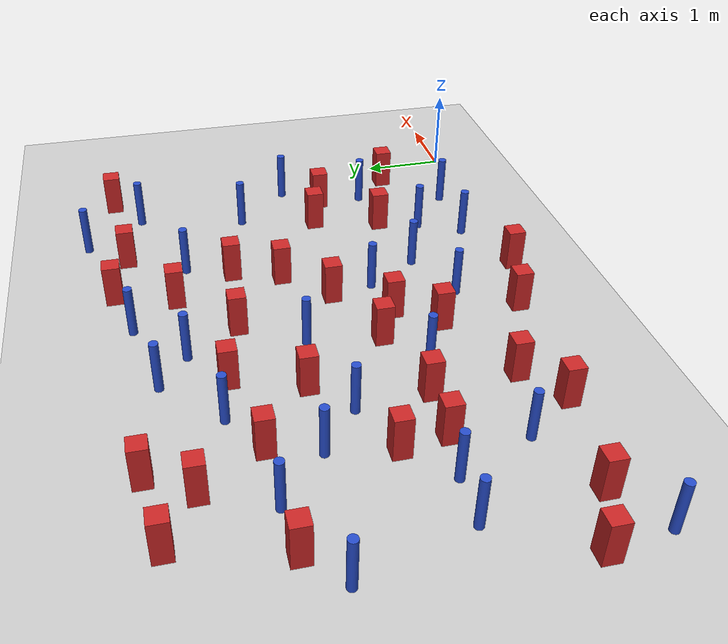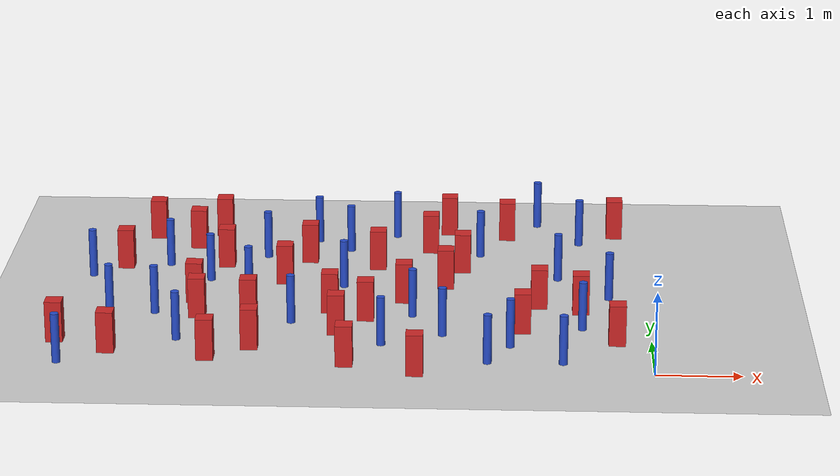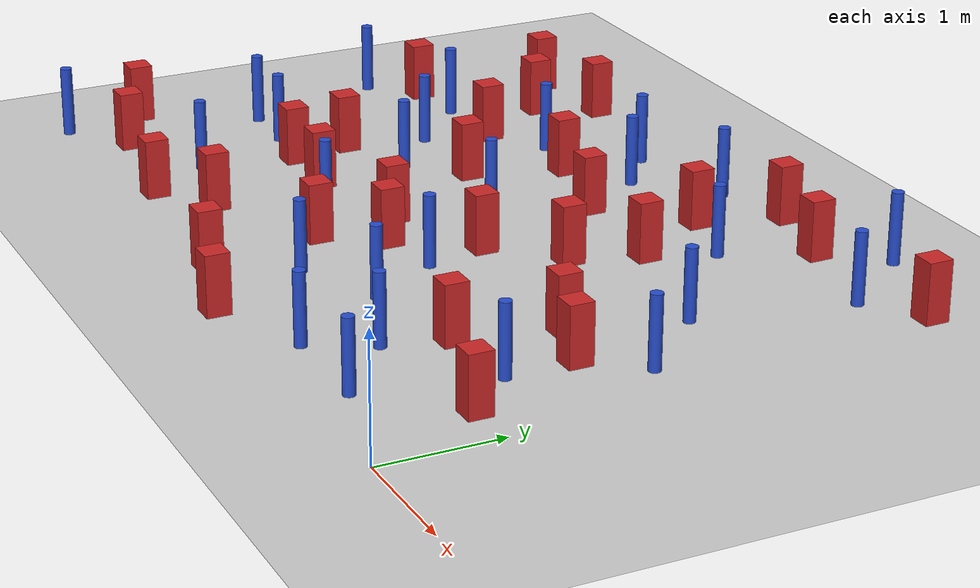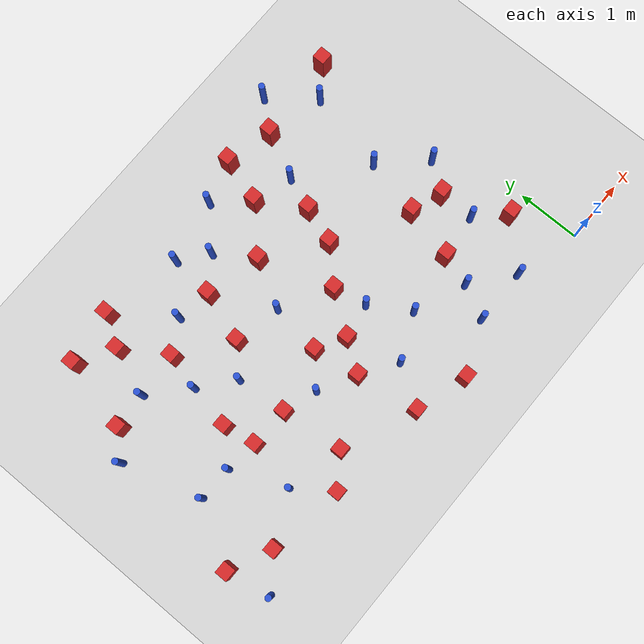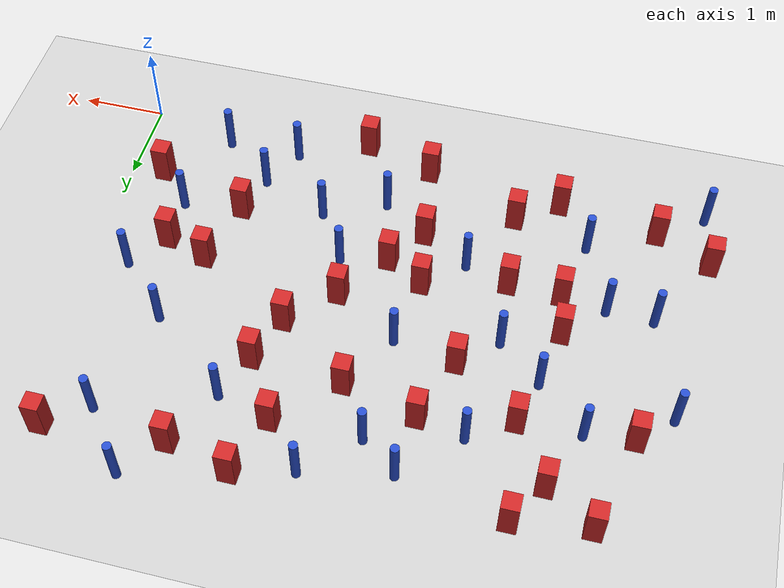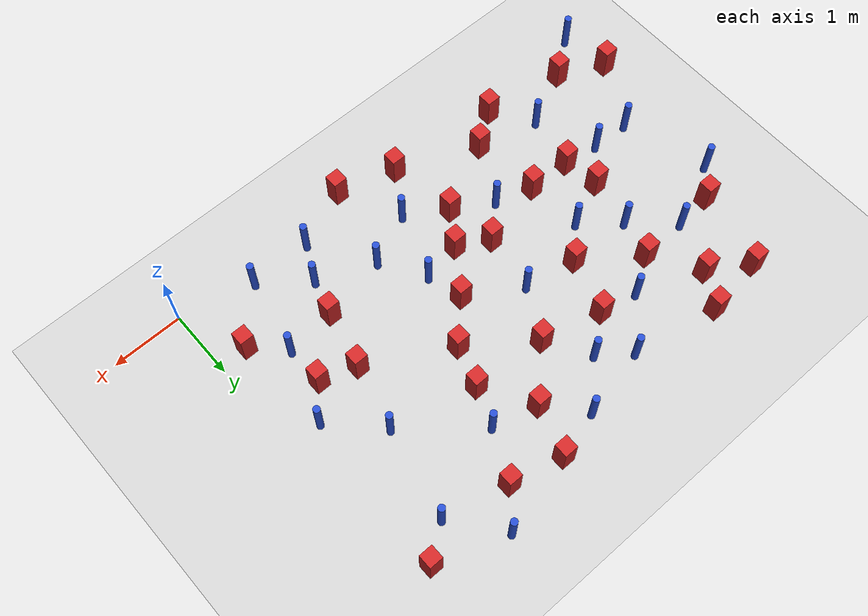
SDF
<sdf version="1.6">
 <world name="default">
  <model name="ground_plane">
   <static>1</static>
   <link name="link">
    <collision name="collision">
     <geometry><plane><normal>0 0 1</normal><size>100 100</size></plane></geometry>
     <surface><friction><ode><mu>100</mu><mu2>50</mu2></ode></friction></surface>
    </collision>
    <visual name="visual">
     <cast_shadows>0</cast_shadows>
     <geometry><plane><normal>0 0 1</normal><size>100 100</size></plane></geometry>
     <material>
      <ambient>1.0 1.0 1.0 1.0</ambient>
      <diffuse>0.8 0.8 0.8 1.0</diffuse>
      <specular>0.01 0.01 0.01 1.000000</specular>
     </material>
    </visual>
   </link>
  </model>
  <model name="square_post_obstacle4">
   <static>true</static>
   <pose>-6.3529247298 0.506604113943 1.91545236811e-07 -7.35059704564e-06 1.12565212e-07 2.39332434364e-05</pose>
   <link name="link">
    <pose>0 0 0.25 0 -0 0</pose>
    <inertial>
     <mass>100</mass>
     <inertia>
      <ixx>0.166667</ixx>
      <ixy>0</ixy>
      <ixz>0</ixz>
      <iyy>0.166667</iyy>
      <iyz>0</iyz>
      <izz>0.166667</izz>
     </inertia>
    </inertial>
    <collision name="collision"><geometry><box><size>.2 .2 .5</size></box></geometry></collision>
    <visual name="visual">
     <geometry><box><size>.2 .2 .5</size></box></geometry>
     <material>
      <script><name>Gazebo/Red</name><uri>file://media/materials/scripts/gazebo.material</uri></script>
     </material>
    </visual>
   </link>
  </model>
  <model name="pole_obstacle5">
   <static>true</static>
   <pose>-6.83310321399 2.95984802754 7.38925637345e-09 -8.47170692798e-08 1.24976764937e-08 -1.74513093023e-07</pose>
   <link name="link">
    <pose>0 0 0.3 0 -0 0</pose>
    <inertial>
     <mass>1</mass>
     <inertia><ixx>0.145833</ixx><ixy>0</ixy><ixz>0</ixz><iyy>0.145833</iyy><iyz>0</iyz><izz>0.125</izz></inertia>
    </inertial>
    <collision name="collision">
     <geometry><cylinder><radius>0.05</radius><length>.6</length></cylinder></geometry>
    </collision>
    <visual name="visual">
     <geometry><cylinder><radius>0.05</radius><length>.6</length></cylinder></geometry>
     <material>
      <script><name>Gazebo/Blue</name><uri>file://media/materials/scripts/gazebo.material</uri></script>
     </material>
    </visual>
   </link>
  </model>
  <model name="square_post_obstacle7">
   <static>true</static>
   <pose>-2.95238209264 2.2382944484 1.91545236811e-07 -7.35059704564e-06 1.12565212e-07 2.39332434364e-05</pose>
   <link name="link">
    <pose>0 0 0.25 0 -0 0</pose>
    <inertial>
     <mass>100</mass>
     <inertia>
      <ixx>0.166667</ixx>
      <ixy>0</ixy>
      <ixz>0</ixz>
      <iyy>0.166667</iyy>
      <iyz>0</iyz>
      <izz>0.166667</izz>
     </inertia>
    </inertial>
    <collision name="collision"><geometry><box><size>.2 .2 .5</size></box></geometry></collision>
    <visual name="visual">
     <geometry><box><size>.2 .2 .5</size></box></geometry>
     <material>
      <script><name>Gazebo/Red</name><uri>file://media/materials/scripts/gazebo.material</uri></script>
     </material>
    </visual>
   </link>
  </model>
  <model name="square_post_obstacle14">
   <static>true</static>
   <pose>-0.408119338565 0.94953494307 1.91545236811e-07 -7.35059704564e-06 1.12565212e-07 2.39332434364e-05</pose>
   <link name="link">
    <pose>0 0 0.25 0 -0 0</pose>
    <inertial>
     <mass>100</mass>
     <inertia>
      <ixx>0.166667</ixx>
      <ixy>0</ixy>
      <ixz>0</ixz>
      <iyy>0.166667</iyy>
      <iyz>0</iyz>
      <izz>0.166667</izz>
     </inertia>
    </inertial>
    <collision name="collision"><geometry><box><size>.2 .2 .5</size></box></geometry></collision>
    <visual name="visual">
     <geometry><box><size>.2 .2 .5</size></box></geometry>
     <material>
      <script><name>Gazebo/Red</name><uri>file://media/materials/scripts/gazebo.material</uri></script>
     </material>
    </visual>
   </link>
  </model>
  <model name="square_post_obstacle17">
   <static>true</static>
   <pose>-6.17913111131 4.42265076465 1.91545236811e-07 -7.35059704564e-06 1.12565212e-07 2.39332434364e-05</pose>
   <link name="link">
    <pose>0 0 0.25 0 -0 0</pose>
    <inertial>
     <mass>100</mass>
     <inertia>
      <ixx>0.166667</ixx>
      <ixy>0</ixy>
      <ixz>0</ixz>
      <iyy>0.166667</iyy>
      <iyz>0</iyz>
      <izz>0.166667</izz>
     </inertia>
    </inertial>
    <collision name="collision"><geometry><box><size>.2 .2 .5</size></box></geometry></collision>
    <visual name="visual">
     <geometry><box><size>.2 .2 .5</size></box></geometry>
     <material>
      <script><name>Gazebo/Red</name><uri>file://media/materials/scripts/gazebo.material</uri></script>
     </material>
    </visual>
   </link>
  </model>
  <model name="square_post_obstacle18">
   <static>true</static>
   <pose>-5.33817524046 4.54224600071 1.91545236811e-07 -7.35059704564e-06 1.12565212e-07 2.39332434364e-05</pose>
   <link name="link">
    <pose>0 0 0.25 0 -0 0</pose>
    <inertial>
     <mass>100</mass>
     <inertia>
      <ixx>0.166667</ixx>
      <ixy>0</ixy>
      <ixz>0</ixz>
      <iyy>0.166667</iyy>
      <iyz>0</iyz>
      <izz>0.166667</izz>
     </inertia>
    </inertial>
    <collision name="collision"><geometry><box><size>.2 .2 .5</size></box></geometry></collision>
    <visual name="visual">
     <geometry><box><size>.2 .2 .5</size></box></geometry>
     <material>
      <script><name>Gazebo/Red</name><uri>file://media/materials/scripts/gazebo.material</uri></script>
     </material>
    </visual>
   </link>
  </model>
  <model name="square_post_obstacle21">
   <static>true</static>
   <pose>-2.26156633794 3.30538135168 1.91545236811e-07 -7.35059704564e-06 1.12565212e-07 2.39332434364e-05</pose>
   <link name="link">
    <pose>0 0 0.25 0 -0 0</pose>
    <inertial>
     <mass>100</mass>
     <inertia>
      <ixx>0.166667</ixx>
      <ixy>0</ixy>
      <ixz>0</ixz>
      <iyy>0.166667</iyy>
      <iyz>0</iyz>
      <izz>0.166667</izz>
     </inertia>
    </inertial>
    <collision name="collision"><geometry><box><size>.2 .2 .5</size></box></geometry></collision>
    <visual name="visual">
     <geometry><box><size>.2 .2 .5</size></box></geometry>
     <material>
      <script><name>Gazebo/Red</name><uri>file://media/materials/scripts/gazebo.material</uri></script>
     </material>
    </visual>
   </link>
  </model>
  <model name="square_post_obstacle27">
   <static>true</static>
   <pose>-4.43828756062 2.82803165865 1.91545236811e-07 -7.35059704564e-06 1.12565212e-07 2.39332434364e-05</pose>
   <link name="link">
    <pose>0 0 0.25 0 -0 0</pose>
    <inertial>
     <mass>100</mass>
     <inertia>
      <ixx>0.166667</ixx>
      <ixy>0</ixy>
      <ixz>0</ixz>
      <iyy>0.166667</iyy>
      <iyz>0</iyz>
      <izz>0.166667</izz>
     </inertia>
    </inertial>
    <collision name="collision"><geometry><box><size>.2 .2 .5</size></box></geometry></collision>
    <visual name="visual">
     <geometry><box><size>.2 .2 .5</size></box></geometry>
     <material>
      <script><name>Gazebo/Red</name><uri>file://media/materials/scripts/gazebo.material</uri></script>
     </material>
    </visual>
   </link>
  </model>
  <model name="pole_obstacle19">
   <static>true</static>
   <pose>-1.91771582292 0.288101899503 7.38925637345e-09 -8.47170692799e-08 1.2497676507e-08 -1.74513093018e-07</pose>
   <link name="link">
    <pose>0 0 0.3 0 -0 0</pose>
    <inertial>
     <mass>1</mass>
     <inertia><ixx>0.145833</ixx><ixy>0</ixy><ixz>0</ixz><iyy>0.145833</iyy><iyz>0</iyz><izz>0.125</izz></inertia>
    </inertial>
    <collision name="collision">
     <geometry><cylinder><radius>0.05</radius><length>.6</length></cylinder></geometry>
    </collision>
    <visual name="visual">
     <geometry><cylinder><radius>0.05</radius><length>.6</length></cylinder></geometry>
     <material>
      <script><name>Gazebo/Blue</name><uri>file://media/materials/scripts/gazebo.material</uri></script>
     </material>
    </visual>
   </link>
  </model>
  <model name="square_post_obstacle30">
   <static>true</static>
   <pose>-2.74436126305 -0.0576603866048 1.91545236811e-07 -7.35059704564e-06 1.12565212e-07 2.39332434364e-05</pose>
   <link name="link">
    <pose>0 0 0.25 0 -0 0</pose>
    <inertial>
     <mass>100</mass>
     <inertia>
      <ixx>0.166667</ixx>
      <ixy>0</ixy>
      <ixz>0</ixz>
      <iyy>0.166667</iyy>
      <iyz>0</iyz>
      <izz>0.166667</izz>
     </inertia>
    </inertial>
    <collision name="collision"><geometry><box><size>.2 .2 .5</size></box></geometry></collision>
    <visual name="visual">
     <geometry><box><size>.2 .2 .5</size></box></geometry>
     <material>
      <script><name>Gazebo/Red</name><uri>file://media/materials/scripts/gazebo.material</uri></script>
     </material>
    </visual>
   </link>
  </model>
  <model name="pole_obstacle20">
   <static>true</static>
   <pose>-6.47195309973 1.74322771378 7.38925637345e-09 -8.471706928e-08 1.24976765134e-08 -1.74513093015e-07</pose>
   <link name="link">
    <pose>0 0 0.3 0 -0 0</pose>
    <inertial>
     <mass>1</mass>
     <inertia><ixx>0.145833</ixx><ixy>0</ixy><ixz>0</ixz><iyy>0.145833</iyy><iyz>0</iyz><izz>0.125</izz></inertia>
    </inertial>
    <collision name="collision">
     <geometry><cylinder><radius>0.05</radius><length>.6</length></cylinder></geometry>
    </collision>
    <visual name="visual">
     <geometry><cylinder><radius>0.05</radius><length>.6</length></cylinder></geometry>
     <material>
      <script><name>Gazebo/Blue</name><uri>file://media/materials/scripts/gazebo.material</uri></script>
     </material>
    </visual>
   </link>
  </model>
  <model name="pole_obstacle22">
   <static>true</static>
   <pose>-5.36052672064 2.8588410902 7.38925637345e-09 -8.47170692798e-08 1.24976764937e-08 -1.74513093023e-07</pose>
   <link name="link">
    <pose>0 0 0.3 0 -0 0</pose>
    <inertial>
     <mass>1</mass>
     <inertia><ixx>0.145833</ixx><ixy>0</ixy><ixz>0</ixz><iyy>0.145833</iyy><iyz>0</iyz><izz>0.125</izz></inertia>
    </inertial>
    <collision name="collision">
     <geometry><cylinder><radius>0.05</radius><length>.6</length></cylinder></geometry>
    </collision>
    <visual name="visual">
     <geometry><cylinder><radius>0.05</radius><length>.6</length></cylinder></geometry>
     <material>
      <script><name>Gazebo/Blue</name><uri>file://media/materials/scripts/gazebo.material</uri></script>
     </material>
    </visual>
   </link>
  </model>
  <model name="pole_obstacle23">
   <static>true</static>
   <pose>-3.68616437885 3.97901580339 7.38925637345e-09 -8.47170692796e-08 1.24976764799e-08 -1.74513093033e-07</pose>
   <link name="link">
    <pose>0 0 0.3 0 -0 0</pose>
    <inertial>
     <mass>1</mass>
     <inertia><ixx>0.145833</ixx><ixy>0</ixy><ixz>0</ixz><iyy>0.145833</iyy><iyz>0</iyz><izz>0.125</izz></inertia>
    </inertial>
    <collision name="collision">
     <geometry><cylinder><radius>0.05</radius><length>.6</length></cylinder></geometry>
    </collision>
    <visual name="visual">
     <geometry><cylinder><radius>0.05</radius><length>.6</length></cylinder></geometry>
     <material>
      <script><name>Gazebo/Blue</name><uri>file://media/materials/scripts/gazebo.material</uri></script>
     </material>
    </visual>
   </link>
  </model>
  <model name="pole_obstacle29">
   <static>true</static>
   <pose>-5.57817930022 0.881417759686 7.38925637345e-09 -8.47170692799e-08 1.24976765038e-08 -1.74513093018e-07</pose>
   <link name="link">
    <pose>0 0 0.3 0 -0 0</pose>
    <inertial>
     <mass>1</mass>
     <inertia><ixx>0.145833</ixx><ixy>0</ixy><ixz>0</ixz><iyy>0.145833</iyy><iyz>0</iyz><izz>0.125</izz></inertia>
    </inertial>
    <collision name="collision">
     <geometry><cylinder><radius>0.05</radius><length>.6</length></cylinder></geometry>
    </collision>
    <visual name="visual">
     <geometry><cylinder><radius>0.05</radius><length>.6</length></cylinder></geometry>
     <material>
      <script><name>Gazebo/Blue</name><uri>file://media/materials/scripts/gazebo.material</uri></script>
     </material>
    </visual>
   </link>
  </model>
  <model name="square_post_obstacle39">
   <static>true</static>
   <pose>-4.78976473604 1.63890168509 1.91545236811e-07 -7.35059704564e-06 1.12565212e-07 2.39332434364e-05</pose>
   <link name="link">
    <pose>0 0 0.25 0 -0 0</pose>
    <inertial>
     <mass>100</mass>
     <inertia>
      <ixx>0.166667</ixx>
      <ixy>0</ixy>
      <ixz>0</ixz>
      <iyy>0.166667</iyy>
      <iyz>0</iyz>
      <izz>0.166667</izz>
     </inertia>
    </inertial>
    <collision name="collision"><geometry><box><size>.2 .2 .5</size></box></geometry></collision>
    <visual name="visual">
     <geometry><box><size>.2 .2 .5</size></box></geometry>
     <material>
      <script><name>Gazebo/Red</name><uri>file://media/materials/scripts/gazebo.material</uri></script>
     </material>
    </visual>
   </link>
  </model>
  <model name="pole_obstacle42">
   <static>true</static>
   <pose>-6.87903153385 0.124969918763 7.38925637345e-09 -8.47170692799e-08 1.24976765098e-08 -1.74513093016e-07</pose>
   <link name="link">
    <pose>0 0 0.3 0 -0 0</pose>
    <inertial>
     <mass>1</mass>
     <inertia><ixx>0.145833</ixx><ixy>0</ixy><ixz>0</ixz><iyy>0.145833</iyy><iyz>0</iyz><izz>0.125</izz></inertia>
    </inertial>
    <collision name="collision">
     <geometry><cylinder><radius>0.05</radius><length>.6</length></cylinder></geometry>
    </collision>
    <visual name="visual">
     <geometry><cylinder><radius>0.05</radius><length>.6</length></cylinder></geometry>
     <material>
      <script><name>Gazebo/Blue</name><uri>file://media/materials/scripts/gazebo.material</uri></script>
     </material>
    </visual>
   </link>
  </model>
  <model name="pole_obstacle43">
   <static>true</static>
   <pose>-3.70486956603 2.68859297781 7.38925637345e-09 -8.47170692798e-08 1.24976764939e-08 -1.74513093025e-07</pose>
   <link name="link">
    <pose>0 0 0.3 0 -0 0</pose>
    <inertial>
     <mass>1</mass>
     <inertia><ixx>0.145833</ixx><ixy>0</ixy><ixz>0</ixz><iyy>0.145833</iyy><iyz>0</iyz><izz>0.125</izz></inertia>
    </inertial>
    <collision name="collision">
     <geometry><cylinder><radius>0.05</radius><length>.6</length></cylinder></geometry>
    </collision>
    <visual name="visual">
     <geometry><cylinder><radius>0.05</radius><length>.6</length></cylinder></geometry>
     <material>
      <script><name>Gazebo/Blue</name><uri>file://media/materials/scripts/gazebo.material</uri></script>
     </material>
    </visual>
   </link>
  </model>
  <model name="square_post_obstacle47">
   <static>true</static>
   <pose>-5.62767027378 4.07397571517 1.91545236811e-07 -7.35059704564e-06 1.12565212e-07 2.39332434364e-05</pose>
   <link name="link">
    <pose>0 0 0.25 0 -0 0</pose>
    <inertial>
     <mass>100</mass>
     <inertia>
      <ixx>0.166667</ixx>
      <ixy>0</ixy>
      <ixz>0</ixz>
      <iyy>0.166667</iyy>
      <iyz>0</iyz>
      <izz>0.166667</izz>
     </inertia>
    </inertial>
    <collision name="collision"><geometry><box><size>.2 .2 .5</size></box></geometry></collision>
    <visual name="visual">
     <geometry><box><size>.2 .2 .5</size></box></geometry>
     <material>
      <script><name>Gazebo/Red</name><uri>file://media/materials/scripts/gazebo.material</uri></script>
     </material>
    </visual>
   </link>
  </model>
  <model name="square_post_obstacle49">
   <static>true</static>
   <pose>-1.5156441775 1.29515172548 1.91545236811e-07 -7.35059704564e-06 1.12565212e-07 2.39332434364e-05</pose>
   <link name="link">
    <pose>0 0 0.25 0 -0 0</pose>
    <inertial>
     <mass>100</mass>
     <inertia>
      <ixx>0.166667</ixx>
      <ixy>0</ixy>
      <ixz>0</ixz>
      <iyy>0.166667</iyy>
      <iyz>0</iyz>
      <izz>0.166667</izz>
     </inertia>
    </inertial>
    <collision name="collision"><geometry><box><size>.2 .2 .5</size></box></geometry></collision>
    <visual name="visual">
     <geometry><box><size>.2 .2 .5</size></box></geometry>
     <material>
      <script><name>Gazebo/Red</name><uri>file://media/materials/scripts/gazebo.material</uri></script>
     </material>
    </visual>
   </link>
  </model>
  <model name="square_post_obstacle50">
   <static>true</static>
   <pose>-0.348688621817 4.62892028573 1.91545236811e-07 -7.35059704564e-06 1.12565212e-07 2.39332434364e-05</pose>
   <link name="link">
    <pose>0 0 0.25 0 -0 0</pose>
    <inertial>
     <mass>100</mass>
     <inertia>
      <ixx>0.166667</ixx>
      <ixy>0</ixy>
      <ixz>0</ixz>
      <iyy>0.166667</iyy>
      <iyz>0</iyz>
      <izz>0.166667</izz>
     </inertia>
    </inertial>
    <collision name="collision"><geometry><box><size>.2 .2 .5</size></box></geometry></collision>
    <visual name="visual">
     <geometry><box><size>.2 .2 .5</size></box></geometry>
     <material>
      <script><name>Gazebo/Red</name><uri>file://media/materials/scripts/gazebo.material</uri></script>
     </material>
    </visual>
   </link>
  </model>
  <model name="square_post_obstacle53">
   <static>true</static>
   <pose>-3.82791051901 1.87362824055 1.91545236811e-07 -7.35059704564e-06 1.12565212e-07 2.39332434364e-05</pose>
   <link name="link">
    <pose>0 0 0.25 0 -0 0</pose>
    <inertial>
     <mass>100</mass>
     <inertia>
      <ixx>0.166667</ixx>
      <ixy>0</ixy>
      <ixz>0</ixz>
      <iyy>0.166667</iyy>
      <iyz>0</iyz>
      <izz>0.166667</izz>
     </inertia>
    </inertial>
    <collision name="collision"><geometry><box><size>.2 .2 .5</size></box></geometry></collision>
    <visual name="visual">
     <geometry><box><size>.2 .2 .5</size></box></geometry>
     <material>
      <script><name>Gazebo/Red</name><uri>file://media/materials/scripts/gazebo.material</uri></script>
     </material>
    </visual>
   </link>
  </model>
  <model name="pole_obstacle60">
   <static>true</static>
   <pose>-4.71859003058 3.71049576946 7.38925637345e-09 -8.47170692798e-08 1.24976764937e-08 -1.74513093023e-07</pose>
   <link name="link">
    <pose>0 0 0.3 0 -0 0</pose>
    <inertial>
     <mass>1</mass>
     <inertia><ixx>0.145833</ixx><ixy>0</ixy><ixz>0</ixz><iyy>0.145833</iyy><iyz>0</iyz><izz>0.125</izz></inertia>
    </inertial>
    <collision name="collision">
     <geometry><cylinder><radius>0.05</radius><length>.6</length></cylinder></geometry>
    </collision>
    <visual name="visual">
     <geometry><cylinder><radius>0.05</radius><length>.6</length></cylinder></geometry>
     <material>
      <script><name>Gazebo/Blue</name><uri>file://media/materials/scripts/gazebo.material</uri></script>
     </material>
    </visual>
   </link>
  </model>
  <model name="square_post_obstacle63">
   <static>true</static>
   <pose>-5.17980114572 0.326915965369 1.91545236811e-07 -7.35059704564e-06 1.12565212e-07 2.39332434364e-05</pose>
   <link name="link">
    <pose>0 0 0.25 0 -0 0</pose>
    <inertial>
     <mass>100</mass>
     <inertia>
      <ixx>0.166667</ixx>
      <ixy>0</ixy>
      <ixz>0</ixz>
      <iyy>0.166667</iyy>
      <iyz>0</iyz>
      <izz>0.166667</izz>
     </inertia>
    </inertial>
    <collision name="collision"><geometry><box><size>.2 .2 .5</size></box></geometry></collision>
    <visual name="visual">
     <geometry><box><size>.2 .2 .5</size></box></geometry>
     <material>
      <script><name>Gazebo/Red</name><uri>file://media/materials/scripts/gazebo.material</uri></script>
     </material>
    </visual>
   </link>
  </model>
  <model name="pole_obstacle63">
   <static>true</static>
   <pose>-0.801210860221 4.29979876576 7.38925637345e-09 -8.471706928e-08 1.24976765086e-08 -1.74513093015e-07</pose>
   <link name="link">
    <pose>0 0 0.3 0 -0 0</pose>
    <inertial>
     <mass>1</mass>
     <inertia><ixx>0.145833</ixx><ixy>0</ixy><ixz>0</ixz><iyy>0.145833</iyy><iyz>0</iyz><izz>0.125</izz></inertia>
    </inertial>
    <collision name="collision">
     <geometry><cylinder><radius>0.05</radius><length>.6</length></cylinder></geometry>
    </collision>
    <visual name="visual">
     <geometry><cylinder><radius>0.05</radius><length>.6</length></cylinder></geometry>
     <material>
      <script><name>Gazebo/Blue</name><uri>file://media/materials/scripts/gazebo.material</uri></script>
     </material>
    </visual>
   </link>
  </model>
  <model name="square_post_obstacle71">
   <static>true</static>
   <pose>-5.20792225248 3.39765912745 1.91545236811e-07 -7.35059704564e-06 1.12565212e-07 2.39332434364e-05</pose>
   <link name="link">
    <pose>0 0 0.25 0 -0 0</pose>
    <inertial>
     <mass>100</mass>
     <inertia>
      <ixx>0.166667</ixx>
      <ixy>0</ixy>
      <ixz>0</ixz>
      <iyy>0.166667</iyy>
      <iyz>0</iyz>
      <izz>0.166667</izz>
     </inertia>
    </inertial>
    <collision name="collision"><geometry><box><size>.2 .2 .5</size></box></geometry></collision>
    <visual name="visual">
     <geometry><box><size>.2 .2 .5</size></box></geometry>
     <material>
      <script><name>Gazebo/Red</name><uri>file://media/materials/scripts/gazebo.material</uri></script>
     </material>
    </visual>
   </link>
  </model>
  <model name="pole_obstacle79">
   <static>true</static>
   <pose>-0.468783634025 2.37928399803 7.38925637345e-09 -8.471706928e-08 1.24976765163e-08 -1.74513093012e-07</pose>
   <link name="link">
    <pose>0 0 0.3 0 -0 0</pose>
    <inertial>
     <mass>1</mass>
     <inertia><ixx>0.145833</ixx><ixy>0</ixy><ixz>0</ixz><iyy>0.145833</iyy><iyz>0</iyz><izz>0.125</izz></inertia>
    </inertial>
    <collision name="collision">
     <geometry><cylinder><radius>0.05</radius><length>.6</length></cylinder></geometry>
    </collision>
    <visual name="visual">
     <geometry><cylinder><radius>0.05</radius><length>.6</length></cylinder></geometry>
     <material>
      <script><name>Gazebo/Blue</name><uri>file://media/materials/scripts/gazebo.material</uri></script>
     </material>
    </visual>
   </link>
  </model>
  <model name="pole_obstacle100">
   <static>true</static>
   <pose>-1.32776017299 4.98010724254 7.38925637345e-09 -8.47170692799e-08 1.24976765033e-08 -1.74513093018e-07</pose>
   <link name="link">
    <pose>0 0 0.3 0 -0 0</pose>
    <inertial>
     <mass>1</mass>
     <inertia><ixx>0.145833</ixx><ixy>0</ixy><ixz>0</ixz><iyy>0.145833</iyy><iyz>0</iyz><izz>0.125</izz></inertia>
    </inertial>
    <collision name="collision">
     <geometry><cylinder><radius>0.05</radius><length>.6</length></cylinder></geometry>
    </collision>
    <visual name="visual">
     <geometry><cylinder><radius>0.05</radius><length>.6</length></cylinder></geometry>
     <material>
      <script><name>Gazebo/Blue</name><uri>file://media/materials/scripts/gazebo.material</uri></script>
     </material>
    </visual>
   </link>
  </model>
  <model name="square_post_obstacle89">
   <static>true</static>
   <pose>-3.3147046513 3.38430847459 1.91545236811e-07 -7.35059704564e-06 1.12565212e-07 2.39332434364e-05</pose>
   <link name="link">
    <pose>0 0 0.25 0 -0 0</pose>
    <inertial>
     <mass>100</mass>
     <inertia>
      <ixx>0.166667</ixx>
      <ixy>0</ixy>
      <ixz>0</ixz>
      <iyy>0.166667</iyy>
      <iyz>0</iyz>
      <izz>0.166667</izz>
     </inertia>
    </inertial>
    <collision name="collision"><geometry><box><size>.2 .2 .5</size></box></geometry></collision>
    <visual name="visual">
     <geometry><box><size>.2 .2 .5</size></box></geometry>
     <material>
      <script><name>Gazebo/Red</name><uri>file://media/materials/scripts/gazebo.material</uri></script>
     </material>
    </visual>
   </link>
  </model>
  <model name="pole_obstacle112">
   <static>true</static>
   <pose>-3.11993438013 4.52050692928 7.38925637345e-09 -8.47170692798e-08 1.24976765033e-08 -1.74513093019e-07</pose>
   <link name="link">
    <pose>0 0 0.3 0 -0 0</pose>
    <inertial>
     <mass>1</mass>
     <inertia><ixx>0.145833</ixx><ixy>0</ixy><ixz>0</ixz><iyy>0.145833</iyy><iyz>0</iyz><izz>0.125</izz></inertia>
    </inertial>
    <collision name="collision">
     <geometry><cylinder><radius>0.05</radius><length>.6</length></cylinder></geometry>
    </collision>
    <visual name="visual">
     <geometry><cylinder><radius>0.05</radius><length>.6</length></cylinder></geometry>
     <material>
      <script><name>Gazebo/Blue</name><uri>file://media/materials/scripts/gazebo.material</uri></script>
     </material>
    </visual>
   </link>
  </model>
  <model name="square_post_obstacle100">
   <static>true</static>
   <pose>-2.4574253053 2.7399407573 1.91545236811e-07 -7.35059704564e-06 1.12565212e-07 2.39332434364e-05</pose>
   <link name="link">
    <pose>0 0 0.25 0 -0 0</pose>
    <inertial>
     <mass>100</mass>
     <inertia>
      <ixx>0.166667</ixx>
      <ixy>0</ixy>
      <ixz>0</ixz>
      <iyy>0.166667</iyy>
      <iyz>0</iyz>
      <izz>0.166667</izz>
     </inertia>
    </inertial>
    <collision name="collision"><geometry><box><size>.2 .2 .5</size></box></geometry></collision>
    <visual name="visual">
     <geometry><box><size>.2 .2 .5</size></box></geometry>
     <material>
      <script><name>Gazebo/Red</name><uri>file://media/materials/scripts/gazebo.material</uri></script>
     </material>
    </visual>
   </link>
  </model>
  <model name="square_post_obstacle111">
   <static>true</static>
   <pose>-1.31546912429 2.1038866209 1.91545236811e-07 -7.35059704564e-06 1.12565212e-07 2.39332434364e-05</pose>
   <link name="link">
    <pose>0 0 0.25 0 -0 0</pose>
    <inertial>
     <mass>100</mass>
     <inertia>
      <ixx>0.166667</ixx>
      <ixy>0</ixy>
      <ixz>0</ixz>
      <iyy>0.166667</iyy>
      <iyz>0</iyz>
      <izz>0.166667</izz>
     </inertia>
    </inertial>
    <collision name="collision"><geometry><box><size>.2 .2 .5</size></box></geometry></collision>
    <visual name="visual">
     <geometry><box><size>.2 .2 .5</size></box></geometry>
     <material>
      <script><name>Gazebo/Red</name><uri>file://media/materials/scripts/gazebo.material</uri></script>
     </material>
    </visual>
   </link>
  </model>
  <model name="pole_obstacle128">
   <static>true</static>
   <pose>-4.10897451834 4.3078829134 7.38925637345e-09 -8.47170692796e-08 1.24976764786e-08 -1.74513093032e-07</pose>
   <link name="link">
    <pose>0 0 0.3 0 -0 0</pose>
    <inertial>
     <mass>1</mass>
     <inertia><ixx>0.145833</ixx><ixy>0</ixy><ixz>0</ixz><iyy>0.145833</iyy><iyz>0</iyz><izz>0.125</izz></inertia>
    </inertial>
    <collision name="collision">
     <geometry><cylinder><radius>0.05</radius><length>.6</length></cylinder></geometry>
    </collision>
    <visual name="visual">
     <geometry><cylinder><radius>0.05</radius><length>.6</length></cylinder></geometry>
     <material>
      <script><name>Gazebo/Blue</name><uri>file://media/materials/scripts/gazebo.material</uri></script>
     </material>
    </visual>
   </link>
  </model>
  <model name="pole_obstacle133">
   <static>true</static>
   <pose>-5.92671595359 1.72529804063 7.38925637345e-09 -8.471706928e-08 1.24976765134e-08 -1.74513093015e-07</pose>
   <link name="link">
    <pose>0 0 0.3 0 -0 0</pose>
    <inertial>
     <mass>1</mass>
     <inertia><ixx>0.145833</ixx><ixy>0</ixy><ixz>0</ixz><iyy>0.145833</iyy><iyz>0</iyz><izz>0.125</izz></inertia>
    </inertial>
    <collision name="collision">
     <geometry><cylinder><radius>0.05</radius><length>.6</length></cylinder></geometry>
    </collision>
    <visual name="visual">
     <geometry><cylinder><radius>0.05</radius><length>.6</length></cylinder></geometry>
     <material>
      <script><name>Gazebo/Blue</name><uri>file://media/materials/scripts/gazebo.material</uri></script>
     </material>
    </visual>
   </link>
  </model>
  <model name="square_post_obstacle122">
   <static>true</static>
   <pose>-6.99555524239 0.814432601812 1.91545236811e-07 -7.35059704564e-06 1.12565212e-07 2.39332434364e-05</pose>
   <link name="link">
    <pose>0 0 0.25 0 -0 0</pose>
    <inertial>
     <mass>100</mass>
     <inertia>
      <ixx>0.166667</ixx>
      <ixy>0</ixy>
      <ixz>0</ixz>
      <iyy>0.166667</iyy>
      <iyz>0</iyz>
      <izz>0.166667</izz>
     </inertia>
    </inertial>
    <collision name="collision"><geometry><box><size>.2 .2 .5</size></box></geometry></collision>
    <visual name="visual">
     <geometry><box><size>.2 .2 .5</size></box></geometry>
     <material>
      <script><name>Gazebo/Red</name><uri>file://media/materials/scripts/gazebo.material</uri></script>
     </material>
    </visual>
   </link>
  </model>
  <model name="pole_obstacle142">
   <static>true</static>
   <pose>-1.08096957681 3.01912231686 7.38925637345e-09 -8.47170692799e-08 1.24976765053e-08 -1.74513093017e-07</pose>
   <link name="link">
    <pose>0 0 0.3 0 -0 0</pose>
    <inertial>
     <mass>1</mass>
     <inertia><ixx>0.145833</ixx><ixy>0</ixy><ixz>0</ixz><iyy>0.145833</iyy><iyz>0</iyz><izz>0.125</izz></inertia>
    </inertial>
    <collision name="collision">
     <geometry><cylinder><radius>0.05</radius><length>.6</length></cylinder></geometry>
    </collision>
    <visual name="visual">
     <geometry><cylinder><radius>0.05</radius><length>.6</length></cylinder></geometry>
     <material>
      <script><name>Gazebo/Blue</name><uri>file://media/materials/scripts/gazebo.material</uri></script>
     </material>
    </visual>
   </link>
  </model>
  <model name="square_post_obstacle134">
   <static>true</static>
   <pose>-5.48918496754 2.16441303287 1.91545236811e-07 -7.35059704564e-06 1.12565212e-07 2.39332434364e-05</pose>
   <link name="link">
    <pose>0 0 0.25 0 -0 0</pose>
    <inertial>
     <mass>100</mass>
     <inertia>
      <ixx>0.166667</ixx>
      <ixy>0</ixy>
      <ixz>0</ixz>
      <iyy>0.166667</iyy>
      <iyz>0</iyz>
      <izz>0.166667</izz>
     </inertia>
    </inertial>
    <collision name="collision"><geometry><box><size>.2 .2 .5</size></box></geometry></collision>
    <visual name="visual">
     <geometry><box><size>.2 .2 .5</size></box></geometry>
     <material>
      <script><name>Gazebo/Red</name><uri>file://media/materials/scripts/gazebo.material</uri></script>
     </material>
    </visual>
   </link>
  </model>
  <model name="square_post_obstacle139">
   <static>true</static>
   <pose>-3.71363794688 1.16143794472 1.91545236811e-07 -7.35059704564e-06 1.12565212e-07 2.39332434364e-05</pose>
   <link name="link">
    <pose>0 0 0.25 0 -0 0</pose>
    <inertial>
     <mass>100</mass>
     <inertia>
      <ixx>0.166667</ixx>
      <ixy>0</ixy>
      <ixz>0</ixz>
      <iyy>0.166667</iyy>
      <iyz>0</iyz>
      <izz>0.166667</izz>
     </inertia>
    </inertial>
    <collision name="collision"><geometry><box><size>.2 .2 .5</size></box></geometry></collision>
    <visual name="visual">
     <geometry><box><size>.2 .2 .5</size></box></geometry>
     <material>
      <script><name>Gazebo/Red</name><uri>file://media/materials/scripts/gazebo.material</uri></script>
     </material>
    </visual>
   </link>
  </model>
  <model name="pole_obstacle149">
   <static>true</static>
   <pose>-1.04344529667 0.291717361823 7.38925637345e-09 -8.471706928e-08 1.24976765083e-08 -1.74513093015e-07</pose>
   <link name="link">
    <pose>0 0 0.3 0 -0 0</pose>
    <inertial>
     <mass>1</mass>
     <inertia><ixx>0.145833</ixx><ixy>0</ixy><ixz>0</ixz><iyy>0.145833</iyy><iyz>0</iyz><izz>0.125</izz></inertia>
    </inertial>
    <collision name="collision">
     <geometry><cylinder><radius>0.05</radius><length>.6</length></cylinder></geometry>
    </collision>
    <visual name="visual">
     <geometry><cylinder><radius>0.05</radius><length>.6</length></cylinder></geometry>
     <material>
      <script><name>Gazebo/Blue</name><uri>file://media/materials/scripts/gazebo.material</uri></script>
     </material>
    </visual>
   </link>
  </model>
  <model name="pole_obstacle151">
   <static>true</static>
   <pose>-2.83056226783 1.73244614249 7.38925637345e-09 -8.471706928e-08 1.24976765152e-08 -1.74513093012e-07</pose>
   <link name="link">
    <pose>0 0 0.3 0 -0 0</pose>
    <inertial>
     <mass>1</mass>
     <inertia><ixx>0.145833</ixx><ixy>0</ixy><ixz>0</ixz><iyy>0.145833</iyy><iyz>0</iyz><izz>0.125</izz></inertia>
    </inertial>
    <collision name="collision">
     <geometry><cylinder><radius>0.05</radius><length>.6</length></cylinder></geometry>
    </collision>
    <visual name="visual">
     <geometry><cylinder><radius>0.05</radius><length>.6</length></cylinder></geometry>
     <material>
      <script><name>Gazebo/Blue</name><uri>file://media/materials/scripts/gazebo.material</uri></script>
     </material>
    </visual>
   </link>
  </model>
  <model name="square_post_obstacle150">
   <static>true</static>
   <pose>-1.71622131364 4.51447909867 1.91545236811e-07 -7.35059704564e-06 1.12565212e-07 2.39332434364e-05</pose>
   <link name="link">
    <pose>0 0 0.25 0 -0 0</pose>
    <inertial>
     <mass>100</mass>
     <inertia>
      <ixx>0.166667</ixx>
      <ixy>0</ixy>
      <ixz>0</ixz>
      <iyy>0.166667</iyy>
      <iyz>0</iyz>
      <izz>0.166667</izz>
     </inertia>
    </inertial>
    <collision name="collision"><geometry><box><size>.2 .2 .5</size></box></geometry></collision>
    <visual name="visual">
     <geometry><box><size>.2 .2 .5</size></box></geometry>
     <material>
      <script><name>Gazebo/Red</name><uri>file://media/materials/scripts/gazebo.material</uri></script>
     </material>
    </visual>
   </link>
  </model>
  <model name="square_post_obstacle151">
   <static>true</static>
   <pose>-2.67663405792 4.0067133744 1.91545236811e-07 -7.35059704564e-06 1.12565212e-07 2.39332434364e-05</pose>
   <link name="link">
    <pose>0 0 0.25 0 -0 0</pose>
    <inertial>
     <mass>100</mass>
     <inertia>
      <ixx>0.166667</ixx>
      <ixy>0</ixy>
      <ixz>0</ixz>
      <iyy>0.166667</iyy>
      <iyz>0</iyz>
      <izz>0.166667</izz>
     </inertia>
    </inertial>
    <collision name="collision"><geometry><box><size>.2 .2 .5</size></box></geometry></collision>
    <visual name="visual">
     <geometry><box><size>.2 .2 .5</size></box></geometry>
     <material>
      <script><name>Gazebo/Red</name><uri>file://media/materials/scripts/gazebo.material</uri></script>
     </material>
    </visual>
   </link>
  </model>
  <model name="pole_obstacle157">
   <static>true</static>
   <pose>-0.805900515058 1.37249535112 7.38925637345e-09 -8.47170692799e-08 1.24976765033e-08 -1.7451309302e-07</pose>
   <link name="link">
    <pose>0 0 0.3 0 -0 0</pose>
    <inertial>
     <mass>1</mass>
     <inertia><ixx>0.145833</ixx><ixy>0</ixy><ixz>0</ixz><iyy>0.145833</iyy><iyz>0</iyz><izz>0.125</izz></inertia>
    </inertial>
    <collision name="collision">
     <geometry><cylinder><radius>0.05</radius><length>.6</length></cylinder></geometry>
    </collision>
    <visual name="visual">
     <geometry><cylinder><radius>0.05</radius><length>.6</length></cylinder></geometry>
     <material>
      <script><name>Gazebo/Blue</name><uri>file://media/materials/scripts/gazebo.material</uri></script>
     </material>
    </visual>
   </link>
  </model>
  <model name="pole_obstacle161">
   <static>true</static>
   <pose>-1.65695136149 0.796018960412 7.38925637345e-09 -8.47170692799e-08 1.24976765075e-08 -1.74513093017e-07</pose>
   <link name="link">
    <pose>0 0 0.3 0 -0 0</pose>
    <inertial>
     <mass>1</mass>
     <inertia><ixx>0.145833</ixx><ixy>0</ixy><ixz>0</ixz><iyy>0.145833</iyy><iyz>0</iyz><izz>0.125</izz></inertia>
    </inertial>
    <collision name="collision">
     <geometry><cylinder><radius>0.05</radius><length>.6</length></cylinder></geometry>
    </collision>
    <visual name="visual">
     <geometry><cylinder><radius>0.05</radius><length>.6</length></cylinder></geometry>
     <material>
      <script><name>Gazebo/Blue</name><uri>file://media/materials/scripts/gazebo.material</uri></script>
     </material>
    </visual>
   </link>
  </model>
  <model name="square_post_obstacle156">
   <static>true</static>
   <pose>-4.6960214045 0.668855936107 1.91545236811e-07 -7.35059704564e-06 1.12565212e-07 2.39332434364e-05</pose>
   <link name="link">
    <pose>0 0 0.25 0 -0 0</pose>
    <inertial>
     <mass>100</mass>
     <inertia>
      <ixx>0.166667</ixx>
      <ixy>0</ixy>
      <ixz>0</ixz>
      <iyy>0.166667</iyy>
      <iyz>0</iyz>
      <izz>0.166667</izz>
     </inertia>
    </inertial>
    <collision name="collision"><geometry><box><size>.2 .2 .5</size></box></geometry></collision>
    <visual name="visual">
     <geometry><box><size>.2 .2 .5</size></box></geometry>
     <material>
      <script><name>Gazebo/Red</name><uri>file://media/materials/scripts/gazebo.material</uri></script>
     </material>
    </visual>
   </link>
  </model>
  <model name="square_post_obstacle157">
   <static>true</static>
   <pose>-3.56339186485 0.189207808144 1.91545236811e-07 -7.35059704564e-06 1.12565212e-07 2.39332434364e-05</pose>
   <link name="link">
    <pose>0 0 0.25 0 -0 0</pose>
    <inertial>
     <mass>100</mass>
     <inertia>
      <ixx>0.166667</ixx>
      <ixy>0</ixy>
      <ixz>0</ixz>
      <iyy>0.166667</iyy>
      <iyz>0</iyz>
      <izz>0.166667</izz>
     </inertia>
    </inertial>
    <collision name="collision"><geometry><box><size>.2 .2 .5</size></box></geometry></collision>
    <visual name="visual">
     <geometry><box><size>.2 .2 .5</size></box></geometry>
     <material>
      <script><name>Gazebo/Red</name><uri>file://media/materials/scripts/gazebo.material</uri></script>
     </material>
    </visual>
   </link>
  </model>
  <model name="square_post_obstacle160">
   <static>true</static>
   <pose>-2.4558068023 4.69533709662 1.91545236811e-07 -7.35059704564e-06 1.12565212e-07 2.39332434364e-05</pose>
   <link name="link">
    <pose>0 0 0.25 0 -0 0</pose>
    <inertial>
     <mass>100</mass>
     <inertia>
      <ixx>0.166667</ixx>
      <ixy>0</ixy>
      <ixz>0</ixz>
      <iyy>0.166667</iyy>
      <iyz>0</iyz>
      <izz>0.166667</izz>
     </inertia>
    </inertial>
    <collision name="collision"><geometry><box><size>.2 .2 .5</size></box></geometry></collision>
    <visual name="visual">
     <geometry><box><size>.2 .2 .5</size></box></geometry>
     <material>
      <script><name>Gazebo/Red</name><uri>file://media/materials/scripts/gazebo.material</uri></script>
     </material>
    </visual>
   </link>
  </model>
  <model name="square_post_obstacle165">
   <static>true</static>
   <pose>-5.40790337919 1.6560419479 1.91545236811e-07 -7.35059704564e-06 1.12565212e-07 2.39332434364e-05</pose>
   <link name="link">
    <pose>0 0 0.25 0 -0 0</pose>
    <inertial>
     <mass>100</mass>
     <inertia>
      <ixx>0.166667</ixx>
      <ixy>0</ixy>
      <ixz>0</ixz>
      <iyy>0.166667</iyy>
      <iyz>0</iyz>
      <izz>0.166667</izz>
     </inertia>
    </inertial>
    <collision name="collision"><geometry><box><size>.2 .2 .5</size></box></geometry></collision>
    <visual name="visual">
     <geometry><box><size>.2 .2 .5</size></box></geometry>
     <material>
      <script><name>Gazebo/Red</name><uri>file://media/materials/scripts/gazebo.material</uri></script>
     </material>
    </visual>
   </link>
  </model>
  <model name="square_post_obstacle189">
   <static>true</static>
   <pose>-4.17675510595 3.59984396351 1.91545236811e-07 -7.35059704564e-06 1.12565212e-07 2.39332434364e-05</pose>
   <link name="link">
    <pose>0 0 0.25 0 -0 0</pose>
    <inertial>
     <mass>100</mass>
     <inertia>
      <ixx>0.166667</ixx>
      <ixy>0</ixy>
      <ixz>0</ixz>
      <iyy>0.166667</iyy>
      <iyz>0</iyz>
      <izz>0.166667</izz>
     </inertia>
    </inertial>
    <collision name="collision"><geometry><box><size>.2 .2 .5</size></box></geometry></collision>
    <visual name="visual">
     <geometry><box><size>.2 .2 .5</size></box></geometry>
     <material>
      <script><name>Gazebo/Red</name><uri>file://media/materials/scripts/gazebo.material</uri></script>
     </material>
    </visual>
   </link>
  </model>
  <model name="square_post_obstacle195">
   <static>true</static>
   <pose>-3.38732373522 1.63047150801 1.91545236811e-07 -7.35059704564e-06 1.12565212e-07 2.39332434364e-05</pose>
   <link name="link">
    <pose>0 0 0.25 0 -0 0</pose>
    <inertial>
     <mass>100</mass>
     <inertia>
      <ixx>0.166667</ixx>
      <ixy>0</ixy>
      <ixz>0</ixz>
      <iyy>0.166667</iyy>
      <iyz>0</iyz>
      <izz>0.166667</izz>
     </inertia>
    </inertial>
    <collision name="collision"><geometry><box><size>.2 .2 .5</size></box></geometry></collision>
    <visual name="visual">
     <geometry><box><size>.2 .2 .5</size></box></geometry>
     <material>
      <script><name>Gazebo/Red</name><uri>file://media/materials/scripts/gazebo.material</uri></script>
     </material>
    </visual>
   </link>
  </model>
  <model name="pole_obstacle188">
   <static>true</static>
   <pose>-4.85437634176 2.43482976268 7.38925637345e-09 -8.47170692798e-08 1.24976764937e-08 -1.74513093023e-07</pose>
   <link name="link">
    <pose>0 0 0.3 0 -0 0</pose>
    <inertial>
     <mass>1</mass>
     <inertia><ixx>0.145833</ixx><ixy>0</ixy><ixz>0</ixz><iyy>0.145833</iyy><iyz>0</iyz><izz>0.125</izz></inertia>
    </inertial>
    <collision name="collision">
     <geometry><cylinder><radius>0.05</radius><length>.6</length></cylinder></geometry>
    </collision>
    <visual name="visual">
     <geometry><cylinder><radius>0.05</radius><length>.6</length></cylinder></geometry>
     <material>
      <script><name>Gazebo/Blue</name><uri>file://media/materials/scripts/gazebo.material</uri></script>
     </material>
    </visual>
   </link>
  </model>
  <model name="pole_obstacle197">
   <static>true</static>
   <pose>-4.26971000461 1.47343224755 7.38925637345e-09 -8.471706928e-08 1.24976765134e-08 -1.74513093015e-07</pose>
   <link name="link">
    <pose>0 0 0.3 0 -0 0</pose>
    <inertial>
     <mass>1</mass>
     <inertia><ixx>0.145833</ixx><ixy>0</ixy><ixz>0</ixz><iyy>0.145833</iyy><iyz>0</iyz><izz>0.125</izz></inertia>
    </inertial>
    <collision name="collision">
     <geometry><cylinder><radius>0.05</radius><length>.6</length></cylinder></geometry>
    </collision>
    <visual name="visual">
     <geometry><cylinder><radius>0.05</radius><length>.6</length></cylinder></geometry>
     <material>
      <script><name>Gazebo/Blue</name><uri>file://media/materials/scripts/gazebo.material</uri></script>
     </material>
    </visual>
   </link>
  </model>
  <model name="pole_obstacle203">
   <static>true</static>
   <pose>-2.45711673562 1.12424358403 7.38925637345e-09 -8.471706928e-08 1.24976765152e-08 -1.74513093012e-07</pose>
   <link name="link">
    <pose>0 0 0.3 0 -0 0</pose>
    <inertial>
     <mass>1</mass>
     <inertia><ixx>0.145833</ixx><ixy>0</ixy><ixz>0</ixz><iyy>0.145833</iyy><iyz>0</iyz><izz>0.125</izz></inertia>
    </inertial>
    <collision name="collision">
     <geometry><cylinder><radius>0.05</radius><length>.6</length></cylinder></geometry>
    </collision>
    <visual name="visual">
     <geometry><cylinder><radius>0.05</radius><length>.6</length></cylinder></geometry>
     <material>
      <script><name>Gazebo/Blue</name><uri>file://media/materials/scripts/gazebo.material</uri></script>
     </material>
    </visual>
   </link>
  </model>
  <model name="pole_obstacle206">
   <static>true</static>
   <pose>-2.04860728228 3.83450197699 7.38925637345e-09 -8.47170692793e-08 1.24976764444e-08 -1.74513093039e-07</pose>
   <link name="link">
    <pose>0 0 0.3 0 -0 0</pose>
    <inertial>
     <mass>1</mass>
     <inertia><ixx>0.145833</ixx><ixy>0</ixy><ixz>0</ixz><iyy>0.145833</iyy><iyz>0</iyz><izz>0.125</izz></inertia>
    </inertial>
    <collision name="collision">
     <geometry><cylinder><radius>0.05</radius><length>.6</length></cylinder></geometry>
    </collision>
    <visual name="visual">
     <geometry><cylinder><radius>0.05</radius><length>.6</length></cylinder></geometry>
     <material>
      <script><name>Gazebo/Blue</name><uri>file://media/materials/scripts/gazebo.material</uri></script>
     </material>
    </visual>
   </link>
  </model>
  <model name="pole_obstacle210">
   <static>true</static>
   <pose>-3.16672157187 0.801585822336 7.38925637345e-09 -8.47170692796e-08 1.24976764768e-08 -1.74513093035e-07</pose>
   <link name="link">
    <pose>0 0 0.3 0 -0 0</pose>
    <inertial>
     <mass>1</mass>
     <inertia><ixx>0.145833</ixx><ixy>0</ixy><ixz>0</ixz><iyy>0.145833</iyy><iyz>0</iyz><izz>0.125</izz></inertia>
    </inertial>
    <collision name="collision">
     <geometry><cylinder><radius>0.05</radius><length>.6</length></cylinder></geometry>
    </collision>
    <visual name="visual">
     <geometry><cylinder><radius>0.05</radius><length>.6</length></cylinder></geometry>
     <material>
      <script><name>Gazebo/Blue</name><uri>file://media/materials/scripts/gazebo.material</uri></script>
     </material>
    </visual>
   </link>
  </model>
  <model name="pole_obstacle215">
   <static>true</static>
   <pose>-5.91465150382 3.37234289829 7.38925637345e-09 -8.47170692798e-08 1.24976764937e-08 -1.74513093023e-07</pose>
   <link name="link">
    <pose>0 0 0.3 0 -0 0</pose>
    <inertial>
     <mass>1</mass>
     <inertia><ixx>0.145833</ixx><ixy>0</ixy><ixz>0</ixz><iyy>0.145833</iyy><iyz>0</iyz><izz>0.125</izz></inertia>
    </inertial>
    <collision name="collision">
     <geometry><cylinder><radius>0.05</radius><length>.6</length></cylinder></geometry>
    </collision>
    <visual name="visual">
     <geometry><cylinder><radius>0.05</radius><length>.6</length></cylinder></geometry>
     <material>
      <script><name>Gazebo/Blue</name><uri>file://media/materials/scripts/gazebo.material</uri></script>
     </material>
    </visual>
   </link>
  </model>
  <model name="square_post_obstacle223">
   <static>true</static>
   <pose>-6.4614900352 3.31208998808 1.91545236811e-07 -7.35059704564e-06 1.12565212e-07 2.39332434364e-05</pose>
   <link name="link">
    <pose>0 0 0.25 0 -0 0</pose>
    <inertial>
     <mass>100</mass>
     <inertia>
      <ixx>0.166667</ixx>
      <ixy>0</ixy>
      <ixz>0</ixz>
      <iyy>0.166667</iyy>
      <iyz>0</iyz>
      <izz>0.166667</izz>
     </inertia>
    </inertial>
    <collision name="collision"><geometry><box><size>.2 .2 .5</size></box></geometry></collision>
    <visual name="visual">
     <geometry><box><size>.2 .2 .5</size></box></geometry>
     <material>
      <script><name>Gazebo/Red</name><uri>file://media/materials/scripts/gazebo.material</uri></script>
     </material>
    </visual>
   </link>
  </model>
  <model name="square_post_obstacle227">
   <static>true</static>
   <pose>-0.816645035195 1.93223998808 1.91545236811e-07 -7.35059704564e-06 1.12565212e-07 2.39332434364e-05</pose>
   <link name="link">
    <pose>0 0 0.25 0 -0 0</pose>
    <inertial>
     <mass>100</mass>
     <inertia>
      <ixx>0.166667</ixx>
      <ixy>0</ixy>
      <ixz>0</ixz>
      <iyy>0.166667</iyy>
      <iyz>0</iyz>
      <izz>0.166667</izz>
     </inertia>
    </inertial>
    <collision name="collision"><geometry><box><size>.2 .2 .5</size></box></geometry></collision>
    <visual name="visual">
     <geometry><box><size>.2 .2 .5</size></box></geometry>
     <material>
      <script><name>Gazebo/Red</name><uri>file://media/materials/scripts/gazebo.material</uri></script>
     </material>
    </visual>
   </link>
  </model>
 </world>
</sdf>
